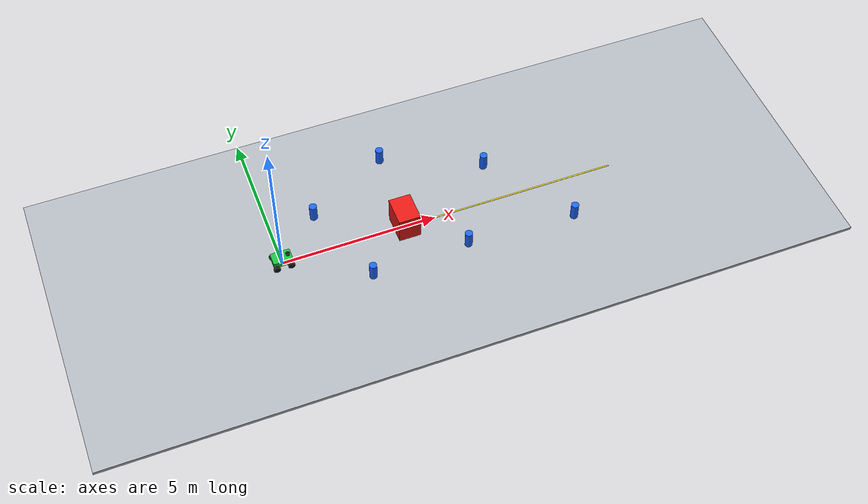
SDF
<?xml version="1.0"?>
<sdf version="1.9">
  <world name="ekf_slam_demo">
    <physics name="fast_accurate" type="ignored">
      <max_step_size>0.001</max_step_size>
      <real_time_factor>1.0</real_time_factor>
    </physics>
    <plugin filename="gz-sim-physics-system" name="gz::sim::systems::Physics"/>
    <plugin filename="gz-sim-user-commands-system" name="gz::sim::systems::UserCommands"/>
    <plugin filename="gz-sim-scene-broadcaster-system" name="gz::sim::systems::SceneBroadcaster"/>
    <plugin filename="gz-sim-sensors-system" name="gz::sim::systems::Sensors">
      <render_engine>ogre2</render_engine>
    </plugin>

    <scene>
      <ambient>0.65 0.65 0.65 1</ambient>
      <background>0.80 0.88 0.96 1</background>
      <shadows>true</shadows>
    </scene>
    <light type="directional" name="sun">
      <cast_shadows>true</cast_shadows>
      <pose>0 0 10 0 0 0</pose>
      <diffuse>0.9 0.9 0.9 1</diffuse>
      <specular>0.2 0.2 0.2 1</specular>
      <direction>-0.4 0.2 -0.9</direction>
    </light>

    <model name="ground">
      <static>true</static>
      <link name="ground_link">
        <collision name="collision">
          <geometry><box><size>24 10 0.10</size></box></geometry>
        </collision>
        <visual name="visual">
          <geometry><box><size>24 10 0.10</size></box></geometry>
          <material>
            <ambient>0.60 0.62 0.65 1</ambient>
            <diffuse>0.70 0.72 0.75 1</diffuse>
          </material>
        </visual>
      </link>
      <pose>5 0 -0.05 0 0 0</pose>
    </model>

    <!-- Original straight path.  The cart returns to y=0 after the detour. -->
    <model name="route_line">
      <static>true</static>
      <pose>5.5 0 0.006 0 0 0</pose>
      <link name="link">
        <visual name="visual">
          <geometry><box><size>11 0.045 0.008</size></box></geometry>
          <material>
            <ambient>0.95 0.85 0.10 1</ambient>
            <diffuse>0.95 0.85 0.10 1</diffuse>
          </material>
        </visual>
      </link>
    </model>

    <!-- Main obstacle: deliberately centered on the yellow route. -->
    <model name="obstacle">
      <static>true</static>
      <pose>4.0 0 0.45 0 0 0</pose>
      <link name="link">
        <collision name="collision"><geometry><box><size>0.70 0.95 0.90</size></box></geometry></collision>
        <visual name="visual">
          <geometry><box><size>0.70 0.95 0.90</size></box></geometry>
          <material><ambient>0.75 0.08 0.06 1</ambient><diffuse>0.90 0.10 0.08 1</diffuse></material>
        </visual>
      </link>
    </model>

    <!-- Circular landmarks are the anonymous features used by EKF-SLAM. -->
    <model name="landmark_1">
      <static>true</static><pose>1.45 1.35 0.28 0 0 0</pose>
      <link name="link"><collision name="c"><geometry><cylinder><radius>0.12</radius><length>0.56</length></cylinder></geometry></collision>
        <visual name="v"><geometry><cylinder><radius>0.12</radius><length>0.56</length></cylinder></geometry><material><ambient>0.08 0.28 0.90 1</ambient><diffuse>0.10 0.40 1 1</diffuse></material></visual></link>
    </model>
    <model name="landmark_2">
      <static>true</static><pose>2.45 -1.45 0.28 0 0 0</pose>
      <link name="link"><collision name="c"><geometry><cylinder><radius>0.12</radius><length>0.56</length></cylinder></geometry></collision>
        <visual name="v"><geometry><cylinder><radius>0.12</radius><length>0.56</length></cylinder></geometry><material><ambient>0.08 0.28 0.90 1</ambient><diffuse>0.10 0.40 1 1</diffuse></material></visual></link>
    </model>
    <model name="landmark_3">
      <static>true</static><pose>4.15 2.80 0.28 0 0 0</pose>
      <link name="link"><collision name="c"><geometry><cylinder><radius>0.12</radius><length>0.56</length></cylinder></geometry></collision>
        <visual name="v"><geometry><cylinder><radius>0.12</radius><length>0.56</length></cylinder></geometry><material><ambient>0.08 0.28 0.90 1</ambient><diffuse>0.10 0.40 1 1</diffuse></material></visual></link>
    </model>
    <model name="landmark_4">
      <static>true</static><pose>5.60 -1.35 0.28 0 0 0</pose>
      <link name="link"><collision name="c"><geometry><cylinder><radius>0.12</radius><length>0.56</length></cylinder></geometry></collision>
        <visual name="v"><geometry><cylinder><radius>0.12</radius><length>0.56</length></cylinder></geometry><material><ambient>0.08 0.28 0.90 1</ambient><diffuse>0.10 0.40 1 1</diffuse></material></visual></link>
    </model>
    <model name="landmark_5">
      <static>true</static><pose>7.20 1.40 0.28 0 0 0</pose>
      <link name="link"><collision name="c"><geometry><cylinder><radius>0.12</radius><length>0.56</length></cylinder></geometry></collision>
        <visual name="v"><geometry><cylinder><radius>0.12</radius><length>0.56</length></cylinder></geometry><material><ambient>0.08 0.28 0.90 1</ambient><diffuse>0.10 0.40 1 1</diffuse></material></visual></link>
    </model>
    <model name="landmark_6">
      <static>true</static><pose>9.10 -1.50 0.28 0 0 0</pose>
      <link name="link"><collision name="c"><geometry><cylinder><radius>0.12</radius><length>0.56</length></cylinder></geometry></collision>
        <visual name="v"><geometry><cylinder><radius>0.12</radius><length>0.56</length></cylinder></geometry><material><ambient>0.08 0.28 0.90 1</ambient><diffuse>0.10 0.40 1 1</diffuse></material></visual></link>
    </model>

    <model name="front_drive_cart" canonical_link="base_link">
      <pose>0 0 0.111 0 0 0</pose>
      <link name="base_link">
        <inertial><mass>8.0</mass><inertia><ixx>0.18</ixx><iyy>0.32</iyy><izz>0.42</izz></inertia></inertial>
        <collision name="body_collision"><pose>0 0 0.13 0 0 0</pose><geometry><box><size>0.62 0.42 0.20</size></box></geometry></collision>
        <visual name="body_visual"><pose>0 0 0.13 0 0 0</pose><geometry><box><size>0.62 0.42 0.20</size></box></geometry>
          <material><ambient>0.08 0.55 0.18 1</ambient><diffuse>0.10 0.75 0.25 1</diffuse></material></visual>
      </link>

      <link name="front_left_wheel">
        <pose relative_to="base_link">0.23 0.25 0 1.5707963 0 0</pose>
        <inertial><mass>0.45</mass><inertia><ixx>0.0025</ixx><iyy>0.0025</iyy><izz>0.0045</izz></inertia></inertial>
        <collision name="c"><geometry><cylinder><radius>0.11</radius><length>0.07</length></cylinder></geometry><surface><friction><ode><mu>1.2</mu><mu2>0.35</mu2></ode></friction></surface></collision>
        <visual name="v"><geometry><cylinder><radius>0.11</radius><length>0.07</length></cylinder></geometry><material><ambient>0.03 0.03 0.03 1</ambient><diffuse>0.08 0.08 0.08 1</diffuse></material></visual>
      </link>
      <link name="front_right_wheel">
        <pose relative_to="base_link">0.23 -0.25 0 1.5707963 0 0</pose>
        <inertial><mass>0.45</mass><inertia><ixx>0.0025</ixx><iyy>0.0025</iyy><izz>0.0045</izz></inertia></inertial>
        <collision name="c"><geometry><cylinder><radius>0.11</radius><length>0.07</length></cylinder></geometry><surface><friction><ode><mu>1.2</mu><mu2>0.35</mu2></ode></friction></surface></collision>
        <visual name="v"><geometry><cylinder><radius>0.11</radius><length>0.07</length></cylinder></geometry><material><ambient>0.03 0.03 0.03 1</ambient><diffuse>0.08 0.08 0.08 1</diffuse></material></visual>
      </link>
      <link name="rear_left_wheel">
        <pose relative_to="base_link">-0.23 0.25 0 1.5707963 0 0</pose>
        <inertial><mass>0.35</mass><inertia><ixx>0.002</ixx><iyy>0.002</iyy><izz>0.004</izz></inertia></inertial>
        <collision name="c"><geometry><cylinder><radius>0.11</radius><length>0.07</length></cylinder></geometry><surface><friction><ode><mu>0.18</mu><mu2>0.18</mu2></ode></friction></surface></collision>
        <visual name="v"><geometry><cylinder><radius>0.11</radius><length>0.07</length></cylinder></geometry><material><ambient>0.03 0.03 0.03 1</ambient><diffuse>0.08 0.08 0.08 1</diffuse></material></visual>
      </link>
      <link name="rear_right_wheel">
        <pose relative_to="base_link">-0.23 -0.25 0 1.5707963 0 0</pose>
        <inertial><mass>0.35</mass><inertia><ixx>0.002</ixx><iyy>0.002</iyy><izz>0.004</izz></inertia></inertial>
        <collision name="c"><geometry><cylinder><radius>0.11</radius><length>0.07</length></cylinder></geometry><surface><friction><ode><mu>0.18</mu><mu2>0.18</mu2></ode></friction></surface></collision>
        <visual name="v"><geometry><cylinder><radius>0.11</radius><length>0.07</length></cylinder></geometry><material><ambient>0.03 0.03 0.03 1</ambient><diffuse>0.08 0.08 0.08 1</diffuse></material></visual>
      </link>

      <joint name="front_left_wheel_joint" type="revolute"><parent>base_link</parent><child>front_left_wheel</child><axis><xyz expressed_in="__model__">0 1 0</xyz><limit><lower>-1e16</lower><upper>1e16</upper><effort>30</effort><velocity>30</velocity></limit><dynamics><damping>0.05</damping></dynamics></axis></joint>
      <joint name="front_right_wheel_joint" type="revolute"><parent>base_link</parent><child>front_right_wheel</child><axis><xyz expressed_in="__model__">0 1 0</xyz><limit><lower>-1e16</lower><upper>1e16</upper><effort>30</effort><velocity>30</velocity></limit><dynamics><damping>0.05</damping></dynamics></axis></joint>
      <joint name="rear_left_wheel_joint" type="revolute"><parent>base_link</parent><child>rear_left_wheel</child><axis><xyz expressed_in="__model__">0 1 0</xyz><limit><lower>-1e16</lower><upper>1e16</upper><effort>10</effort><velocity>30</velocity></limit><dynamics><damping>0.015</damping></dynamics></axis></joint>
      <joint name="rear_right_wheel_joint" type="revolute"><parent>base_link</parent><child>rear_right_wheel</child><axis><xyz expressed_in="__model__">0 1 0</xyz><limit><lower>-1e16</lower><upper>1e16</upper><effort>10</effort><velocity>30</velocity></limit><dynamics><damping>0.015</damping></dynamics></axis></joint>

      <link name="lidar_link">
        <pose relative_to="base_link">0.20 0 0.28 0 0 0</pose>
        <inertial><mass>0.12</mass><inertia><ixx>0.0002</ixx><iyy>0.0002</iyy><izz>0.0002</izz></inertia></inertial>
        <visual name="v"><geometry><cylinder><radius>0.065</radius><length>0.07</length></cylinder></geometry><material><ambient>0.04 0.04 0.04 1</ambient><diffuse>0.10 0.10 0.10 1</diffuse></material></visual>
        <sensor name="lidar" type="gpu_lidar">
          <topic>scan</topic><gz_frame_id>lidar_link</gz_frame_id><update_rate>15</update_rate><always_on>true</always_on><visualize>true</visualize>
          <lidar><scan><horizontal><samples>720</samples><resolution>1</resolution><min_angle>-2.35619</min_angle><max_angle>2.35619</max_angle></horizontal></scan>
            <range><min>0.12</min><max>10.0</max><resolution>0.005</resolution></range>
            <noise><type>gaussian</type><mean>0.0</mean><stddev>0.004</stddev></noise></lidar>
        </sensor>
      </link>
      <joint name="lidar_joint" type="fixed"><parent>base_link</parent><child>lidar_link</child></joint>

      <!-- Only the two FRONT joints are commanded. Rear wheels stay passive. -->
      <plugin filename="gz-sim-diff-drive-system" name="gz::sim::systems::DiffDrive">
        <left_joint>front_left_wheel_joint</left_joint>
        <right_joint>front_right_wheel_joint</right_joint>
        <wheel_separation>0.50</wheel_separation><wheel_radius>0.11</wheel_radius>
        <topic>cmd_vel</topic><odom_topic>wheel/odom</odom_topic>
        <frame_id>wheel_odom</frame_id><child_frame_id>base_footprint</child_frame_id>
        <odom_publish_frequency>40</odom_publish_frequency>
        <max_linear_acceleration>1.2</max_linear_acceleration>
        <max_angular_acceleration>2.2</max_angular_acceleration>
      </plugin>
      <!-- Model-pose odometry closes the controller loop around real skid.
           EKF adds configurable encoder scale errors before prediction. -->
      <plugin filename="gz-sim-odometry-publisher-system" name="gz::sim::systems::OdometryPublisher">
        <dimensions>2</dimensions>
        <odom_frame>odom</odom_frame>
        <robot_base_frame>base_footprint</robot_base_frame>
        <odom_topic>odom</odom_topic>
        <odom_publish_frequency>40</odom_publish_frequency>
      </plugin>
      <plugin filename="gz-sim-joint-state-publisher-system" name="gz::sim::systems::JointStatePublisher">
        <topic>joint_states</topic>
        <joint_name>front_left_wheel_joint</joint_name><joint_name>front_right_wheel_joint</joint_name>
        <joint_name>rear_left_wheel_joint</joint_name><joint_name>rear_right_wheel_joint</joint_name>
      </plugin>
    </model>
  </world>
</sdf>
